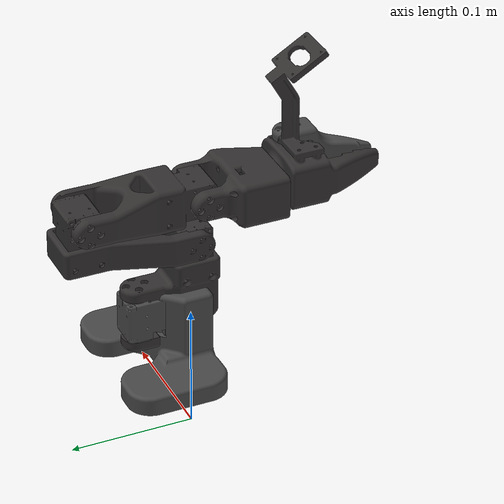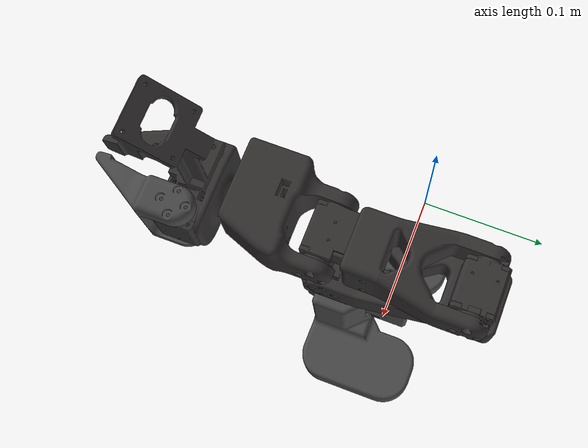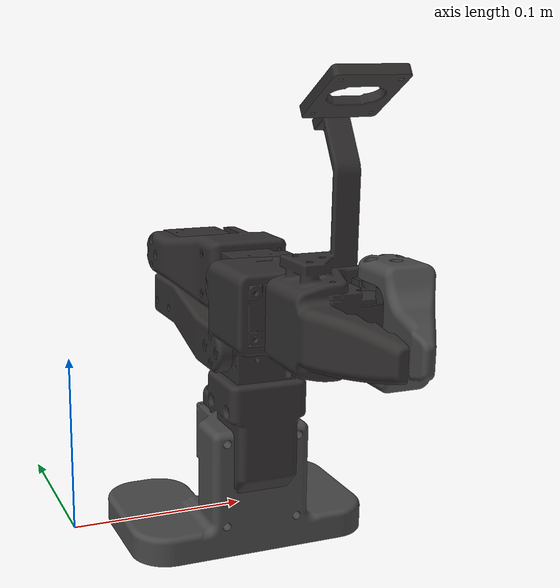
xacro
<?xml version="1.0"?>
<robot xmlns:xacro="http://www.ros.org/wiki/xacro" name="Issac_sim_6DOF_ARM">

  <!-- Calibrated gripper-joint origin: the exported model had the jaw mounted ~2.8cm off
       (x -0.02, y +0.02); these defaults place it correctly. Still overridable on the CLI. -->
  <xacro:arg name="gx" default="-0.020000"/>
  <xacro:arg name="gy" default="0.020000"/>
  <xacro:arg name="gz" default="0.022210"/>
  <xacro:arg name="gR" default="0.0"/>
  <xacro:arg name="gP" default="0.0"/>
  <xacro:arg name="gY" default="-3.141593"/>

  <!-- Drop the gripper link+joint (with_gripper:=false) for the keyboard tuning tool,
       which overlays its own movable gripper marker instead. -->
  <xacro:arg name="with_gripper" default="true"/>

  <!-- Materials (shared across all assemblies) -->
  <material name="PLA_base_link_67_43g">
    <color rgba="0.286 0.286 0.286 1.0"/>
  </material>
  <material name="XL430_ABS_57_2g">
    <color rgba="0.200 0.188 0.188 1.0"/>
  </material>
  <material name="PLA_part_13_81g">
    <color rgba="0.286 0.286 0.286 1.0"/>
  </material>

  <!-- Assembly includes -->
  <xacro:include filename="$(find lerobot_ver2)/urdf/assemblies/XL_430.urdf.xacro"/>
  <xacro:include filename="$(find lerobot_ver2)/urdf/assemblies/Issac_sim_6DOF_ARM.urdf.xacro"/>

  <!-- Instantiate assemblies -->
  <xacro:XL_430 prefix=""/>
  <xacro:Issac_sim_6DOF_ARM prefix=""/>

  <!-- Mount joints (cross-assembly connections) -->
  <!-- These define how assemblies connect to each other. -->
  <!-- When swapping a dummy assembly with a real part, -->
  <!-- update the include + macro call above, and adjust -->
  <!-- parent/child link names in the mount joint below. -->

  <joint name="base" type="revolute">
    <parent link="base_link"/>
    <child link="J1"/>
    <origin xyz="0.093965 0.007519 0.063900" rpy="1.570796 0.000000 1.570796"/>
    <axis xyz="-0.000000 1.000000 0.000000"/>
    <limit lower="1.570796" upper="4.712389" effort="100.0" velocity="1.00"/>
  </joint>

  <xacro:if value="$(arg with_gripper)">
    <joint name="gripper" type="revolute">
      <parent link="J5"/>
      <child link="gripper"/>
      <origin xyz="$(arg gx) $(arg gy) $(arg gz)" rpy="$(arg gR) $(arg gP) $(arg gY)"/>
      <axis xyz="0.000000 0.000000 1.000000"/>
      <limit lower="-1.570796" upper="0.087266" effort="100.0" velocity="1.00"/>
    </joint>
  </xacro:if>

  <!-- ROS 2 control: generated generic system -->
  <ros2_control name="Issac_sim_6DOF_ARM_system" type="system">
    <hardware>
      <plugin>mock_components/GenericSystem</plugin>
      <param name="cmd_topic">sim/Issac_sim_6DOF_ARM_system/cmd</param>
      <param name="state_topic">sim/Issac_sim_6DOF_ARM_system/state</param>
    </hardware>

    <joint name="base">
      <command_interface name="position"/>
      <command_interface name="velocity"/>
      <state_interface name="position">
        <param name="initial_value">0.0</param>
      </state_interface>
      <state_interface name="velocity"/>
      <state_interface name="effort"/>
    </joint>
    <joint name="gripper">
      <command_interface name="position"/>
      <command_interface name="velocity"/>
      <state_interface name="position">
        <param name="initial_value">0.0</param>
      </state_interface>
      <state_interface name="velocity"/>
      <state_interface name="effort"/>
    </joint>
  </ros2_control>

</robot>

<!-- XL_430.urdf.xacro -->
<robot xmlns:xacro="http://www.ros.org/wiki/xacro" name="XL_430_macro">

  <xacro:macro name="XL_430" params="prefix">

    <!-- Links -->
    <link name="${prefix}J1">
      <inertial>
        <origin xyz="0.043657 0.016326 0.000332" rpy="0 0 0"/>
        <mass value="0.090380"/>
        <inertia ixx="7.970782e-05" ixy="-1.049455e-05" ixz="-4.229546e-08"
                 iyy="2.416686e-05" iyz="-5.436252e-07" izz="8.547417e-05"/>
      </inertial>
      <visual>
        <origin xyz="0.046500 0.045100 0.000000" rpy="0 0 0"/>
        <geometry>
          <mesh filename="package://lerobot_ver2/meshes/XL_430/J1.dae" scale="1 1 1"/>
        </geometry>
        <material name="XL430_ABS_57_2g"/>
      </visual>
      <collision>
        <origin xyz="0.046500 0.045100 0.000000" rpy="0 0 0"/>
        <geometry>
          <mesh filename="package://lerobot_ver2/meshes/XL_430/J1_collision.stl" scale="0.01 0.01 0.01"/>
        </geometry>
      </collision>
    </link>

    <link name="${prefix}J2">
      <inertial>
        <origin xyz="-0.079222 0.016318 -0.021770" rpy="0 0 0"/>
        <mass value="0.088830"/>
        <inertia ixx="3.565897e-05" ixy="1.849243e-05" ixz="4.307046e-07"
                 iyy="8.199029e-05" iyz="-2.806739e-07" izz="8.747432e-05"/>
      </inertial>
      <visual>
        <origin xyz="-0.093581 0.035250 -0.022100" rpy="0 0 0"/>
        <geometry>
          <mesh filename="package://lerobot_ver2/meshes/XL_430/J2.dae" scale="1 1 1"/>
        </geometry>
        <material name="XL430_ABS_57_2g"/>
      </visual>
      <collision>
        <origin xyz="-0.093581 0.035250 -0.022100" rpy="0 0 0"/>
        <geometry>
          <mesh filename="package://lerobot_ver2/meshes/XL_430/J2_collision.stl" scale="0.01 0.01 0.01"/>
        </geometry>
      </collision>
    </link>

    <link name="${prefix}J3">
      <inertial>
        <origin xyz="-0.000021 0.072609 -0.021765" rpy="0 0 0"/>
        <mass value="0.087650"/>
        <inertia ixx="8.170187e-05" ixy="9.133918e-08" ixz="8.995191e-09"
                 iyy="2.219431e-05" iyz="-5.276180e-07" izz="7.297765e-05"/>
      </inertial>
      <visual>
        <origin xyz="-0.000045 0.099984 -0.022100" rpy="0 0 0"/>
        <geometry>
          <mesh filename="package://lerobot_ver2/meshes/XL_430/J3.dae" scale="1 1 1"/>
        </geometry>
        <material name="XL430_ABS_57_2g"/>
      </visual>
      <collision>
        <origin xyz="-0.000045 0.099984 -0.022100" rpy="0 0 0"/>
        <geometry>
          <mesh filename="package://lerobot_ver2/meshes/XL_430/J3_collision.stl" scale="0.01 0.01 0.01"/>
        </geometry>
      </collision>
    </link>

    <link name="${prefix}J4">
      <inertial>
        <origin xyz="-0.000006 0.013195 0.042267" rpy="0 0 0"/>
        <mass value="0.088640"/>
        <inertia ixx="4.672764e-05" ixy="4.109290e-09" ixz="-4.822448e-08"
                 iyy="2.784948e-05" iyz="3.473844e-06" izz="3.500453e-05"/>
      </inertial>
      <visual>
        <origin xyz="0.000000 0.022100 0.047250" rpy="0 0 0"/>
        <geometry>
          <mesh filename="package://lerobot_ver2/meshes/XL_430/J4.dae" scale="1 1 1"/>
        </geometry>
        <material name="XL430_ABS_57_2g"/>
      </visual>
      <collision>
        <origin xyz="0.000000 0.022100 0.047250" rpy="0 0 0"/>
        <geometry>
          <mesh filename="package://lerobot_ver2/meshes/XL_430/J4_collision.stl" scale="0.01 0.01 0.01"/>
        </geometry>
      </collision>
    </link>

    <link name="${prefix}J5">
      <inertial>
        <origin xyz="-0.020667 0.001686 -0.006849" rpy="0 0 0"/>
        <mass value="0.086170"/>
        <inertia ixx="7.738749e-05" ixy="-3.220679e-06" ixz="2.806365e-06"
                 iyy="6.984756e-05" iyz="-1.707951e-06" izz="3.684768e-05"/>
      </inertial>
      <visual>
        <origin xyz="-0.020250 0.019500 -0.000000" rpy="0 0 0"/>
        <geometry>
          <mesh filename="package://lerobot_ver2/meshes/XL_430/J5.dae" scale="1 1 1"/>
        </geometry>
        <material name="XL430_ABS_57_2g"/>
      </visual>
      <collision>
        <origin xyz="-0.020250 0.019500 -0.000000" rpy="0 0 0"/>
        <geometry>
          <mesh filename="package://lerobot_ver2/meshes/XL_430/J5_collision.stl" scale="0.01 0.01 0.01"/>
        </geometry>
      </collision>
    </link>

    <!-- Joints (internal to assembly) -->
    <joint name="${prefix}shoulder" type="revolute">
      <parent link="${prefix}J1"/>
      <child link="${prefix}J2"/>
      <origin xyz="0.046500 0.045100 0.022100" rpy="-0.000000 0.000000 -0.000000"/>
      <axis xyz="-0.000000 -0.000000 1.000000"/>
      <limit lower="-1.570796" upper="1.570796" effort="100.0" velocity="1.00"/>
    </joint>

    <joint name="${prefix}elbow" type="revolute">
      <parent link="${prefix}J2"/>
      <child link="${prefix}J3"/>
      <origin xyz="-0.093581 0.035250 0.000000" rpy="-0.000000 0.000000 -1.570796"/>
      <axis xyz="-0.000000 -0.000000 1.000000"/>
      <limit lower="-1.570796" upper="1.570796" effort="100.0" velocity="1.00"/>
    </joint>

    <joint name="${prefix}wrist_pitch" type="revolute">
      <parent link="${prefix}J3"/>
      <child link="${prefix}J4"/>
      <origin xyz="-0.000045 0.099984 -0.000010" rpy="-1.570796 -0.000000 0.000000"/>
      <axis xyz="0.000000 -1.000000 -0.000000"/>
      <limit lower="-3.141593" upper="0.000000" effort="100.0" velocity="1.00"/>
    </joint>

    <joint name="${prefix}wrist_roll" type="revolute">
      <parent link="${prefix}J4"/>
      <child link="${prefix}J5"/>
      <origin xyz="0.000000 0.022100 0.069350" rpy="-0.000000 1.570796 0.000000"/>
      <axis xyz="-1.000000 -0.000000 0.000000"/>
      <limit lower="-3.054326" upper="3.054326" effort="100.0" velocity="1.00"/>
    </joint>

    <!-- ROS 2 control: generated generic system -->
    <ros2_control name="${prefix}XL_430_system" type="system">
      <hardware>
        <plugin>mock_components/GenericSystem</plugin>
        <param name="cmd_topic">sim/XL_430_system/cmd</param>
        <param name="state_topic">sim/XL_430_system/state</param>
      </hardware>

      <joint name="${prefix}elbow">
        <command_interface name="position"/>
        <command_interface name="velocity"/>
        <state_interface name="position">
          <param name="initial_value">0.0</param>
        </state_interface>
        <state_interface name="velocity"/>
        <state_interface name="effort"/>
      </joint>
      <joint name="${prefix}shoulder">
        <command_interface name="position"/>
        <command_interface name="velocity"/>
        <state_interface name="position">
          <param name="initial_value">0.0</param>
        </state_interface>
        <state_interface name="velocity"/>
        <state_interface name="effort"/>
      </joint>
      <joint name="${prefix}wrist_pitch">
        <command_interface name="position"/>
        <command_interface name="velocity"/>
        <state_interface name="position">
          <param name="initial_value">0.0</param>
        </state_interface>
        <state_interface name="velocity"/>
        <state_interface name="effort"/>
      </joint>
      <joint name="${prefix}wrist_roll">
        <command_interface name="position"/>
        <command_interface name="velocity"/>
        <state_interface name="position">
          <param name="initial_value">0.0</param>
        </state_interface>
        <state_interface name="velocity"/>
        <state_interface name="effort"/>
      </joint>
    </ros2_control>

  </xacro:macro>

</robot>

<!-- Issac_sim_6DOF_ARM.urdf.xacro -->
<robot xmlns:xacro="http://www.ros.org/wiki/xacro" name="Issac_sim_6DOF_ARM_macro">

  <xacro:macro name="Issac_sim_6DOF_ARM" params="prefix">

    <!-- Links -->
    <link name="${prefix}base_link">
      <inertial>
        <origin xyz="0.093970 -0.012453 0.026886" rpy="0 0 0"/>
        <mass value="0.124630"/>
        <inertia ixx="1.100219e-04" ixy="-1.277713e-08" ixz="-1.416650e-09"
                 iyy="1.435595e-04" iyz="-1.458301e-06" izz="1.335628e-04"/>
      </inertial>
      <visual>
        <origin xyz="0.000000 0.000000 0.000000" rpy="0 0 0"/>
        <geometry>
          <mesh filename="package://lerobot_ver2/meshes/Issac_sim_6DOF_ARM/base_link.dae" scale="1 1 1"/>
        </geometry>
        <material name="PLA_base_link_67_43g"/>
      </visual>
      <collision>
        <origin xyz="0.000000 0.000000 0.000000" rpy="0 0 0"/>
        <geometry>
          <mesh filename="package://lerobot_ver2/meshes/Issac_sim_6DOF_ARM/base_link_collision.stl" scale="0.01 0.01 0.01"/>
        </geometry>
      </collision>
    </link>

    <xacro:if value="$(arg with_gripper)">
    <link name="${prefix}gripper">
      <inertial>
        <origin xyz="0.024154 0.003437 -0.022247" rpy="0 0 0"/>
        <mass value="0.013810"/>
        <inertia ixx="4.486468e-06" ixy="-1.025877e-06" ixz="-2.593753e-10"
                 iyy="7.790068e-06" iyz="8.090210e-13" izz="4.934932e-06"/>
      </inertial>
      <visual>
        <origin xyz="-0.000000 -0.000000 -0.041500" rpy="0 0 0"/>
        <geometry>
          <mesh filename="package://lerobot_ver2/meshes/Issac_sim_6DOF_ARM/gripper.dae" scale="1 1 1"/>
        </geometry>
        <material name="PLA_part_13_81g"/>
      </visual>
      <collision>
        <origin xyz="-0.000000 -0.000000 -0.041500" rpy="0 0 0"/>
        <geometry>
          <mesh filename="package://lerobot_ver2/meshes/Issac_sim_6DOF_ARM/gripper_collision.stl" scale="0.01 0.01 0.01"/>
        </geometry>
      </collision>
    </link>
    </xacro:if>

  </xacro:macro>

</robot>
